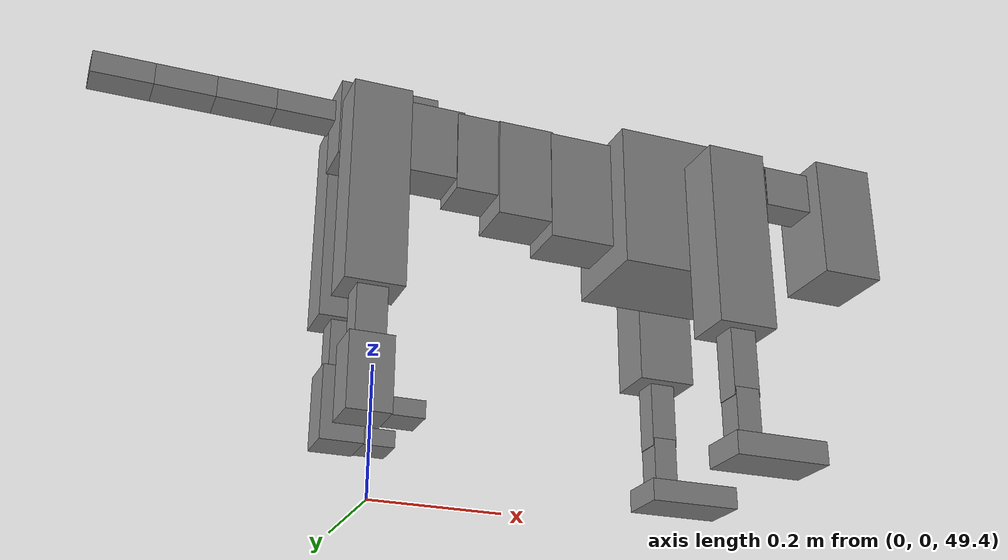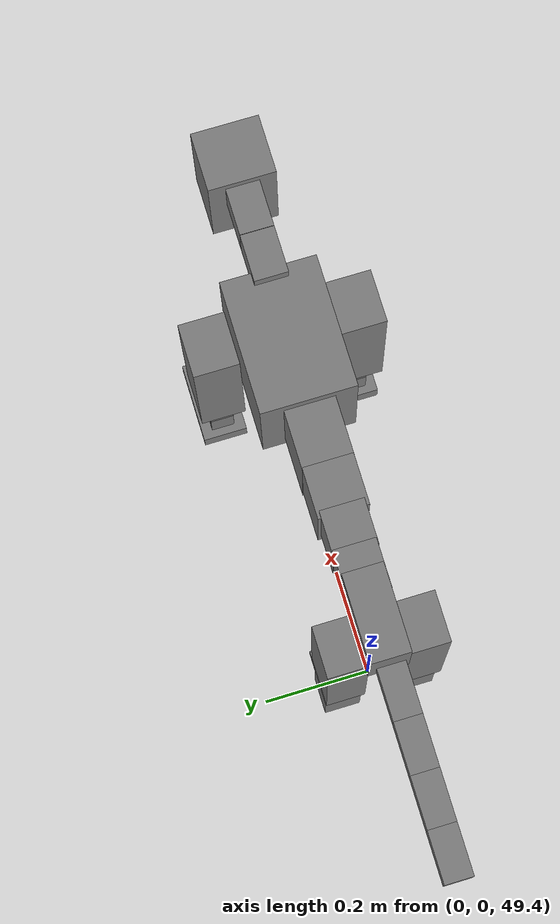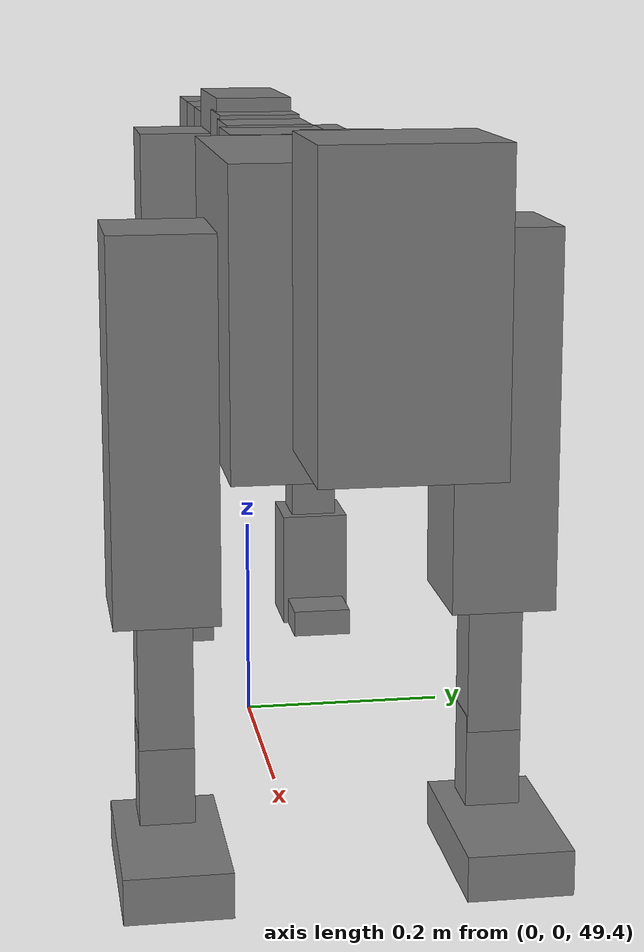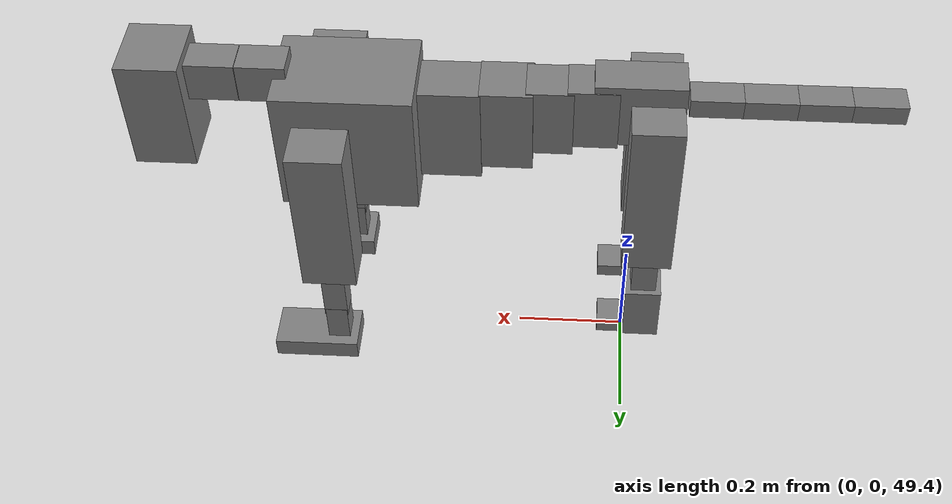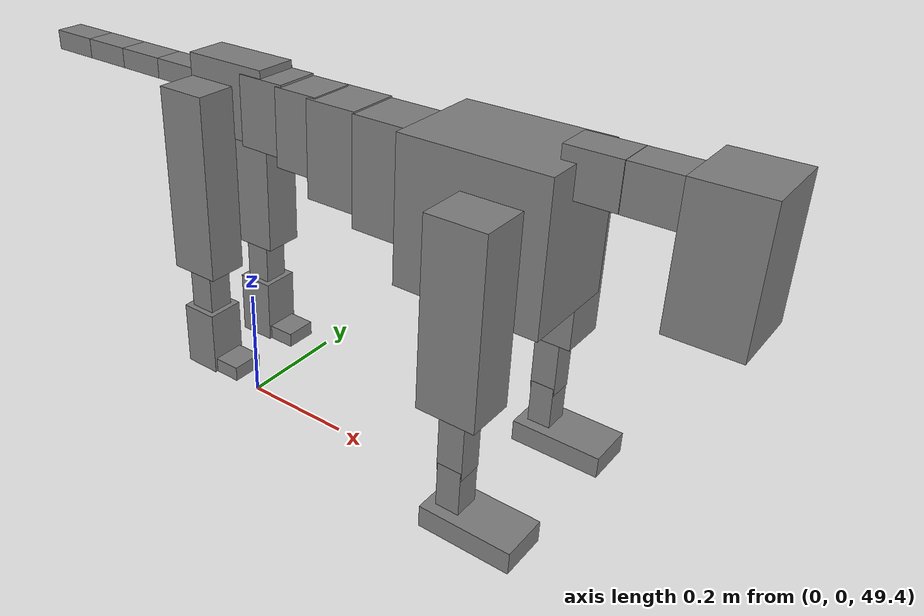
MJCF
<mujoco model="dog">

    <default>
        <joint armature="0.02" stiffness="1" damping="0.2" limited="true"/>
        <geom condim="3" friction="1 0.05 0.05" margin="0.01"/>
        <motor ctrllimited="true" ctrlrange="-1.0 1.0" forcelimited="true" gear="50"/>
    </default>

    <compiler inertiafromgeom="true" angle="radian"/>

    <option timestep="0.016" iterations="50" tolerance="1e-10" solver="Newton" jacobian="dense" cone="pyramidal"/>

    <size nconmax="20000" njmax="60000" nstack="5000000"/>
    <visual>
        <map force="0.1" zfar="30"/>
        <rgba haze="0.15 0.25 0.35 1"/>
        <quality shadowsize="2048"/>
        <global offwidth="800" offheight="800"/>
    </visual>

    <asset>
        <texture type="skybox" builtin="gradient" rgb1="0.3 0.5 0.7" rgb2="0 0 0" width="512" height="512"/>
        <texture name="texplane" type="2d" builtin="checker" rgb1=".2 .3 .4" rgb2=".1 0.15 0.2" width="512" height="512"
                 mark="cross" markrgb=".8 .8 .8"/>
        <texture name="texgeom" type="cube" builtin="flat" mark="cross" width="127" height="1278" rgb1="0.8 0.6 0.4"
                 rgb2="0.8 0.6 0.4" markrgb="1 1 1" random="0.01"/>

        <material name="matplane" reflectance="0.3" texture="texplane" texrepeat="1 1" texuniform="true"/>
        <material name="matgeom" texture="texgeom" texuniform="true" rgba="0.8 0.6 .4 1"/>
    </asset>

    <worldbody>
        <geom name="floor" pos="0 0 0" size="0 0 .25" type="plane" material="matplane" condim="3"/>

        <light directional="false" diffuse=".2 .2 .2" specular="0 0 0" pos="0 0 5" dir="0 0 -1" castshadow="false"/>
        <light mode="targetbodycom" target="torso" directional="false" diffuse=".8 .8 .8" specular="0.3 0.3 0.3"
               pos="0 0 4.0" dir="0 0 -1"/>

        <body name="root" pos="0 0 50">
            <freejoint name="root_1"/>
            <geom type="box" pos="0 0 -0.02" size="0.0774  0.0358  0.063" density="2030"/>

            <body name="spine1" pos="0.054 0 0">
                <joint name="spine1_y" axis="0 1 0" range="0 0.7" limited="true"/>
                <geom type="box" pos="0.02375 0 -0.03" size="0.04375  0.0375  0.05985" density="2030"/>

                <body name="spine2" pos="0.0612 0 0">
                    <joint name="spine2_y" axis="0 1 0" range="-0.15 0.15" limited="true"/>
                    <geom type="box" pos="0.03555  0  -0.04" size="0.04055  0.039  0.06615" density="2030"/>

                    <body name="spine3" pos="0.0730 0 0">
                        <joint name="spine3_y" axis="0 1 0" range="-0.15 0.15" limited="true"/>
                        <geom type="box" pos="0.03555  0  -0.057" size="0.04555  0.0445  0.081" density="2030"/>

                        <body name="spine4" pos="0.0780 0 0">
                            <joint name="spine4_y" axis="0 1 0" range="-0.15 0.15" limited="true"/>
                            <geom type="box" pos="0.05265  0  -0.07" size="0.05265  0.045  0.09135" density="2030"/>

                            <body name="torso" pos="0.1082 0 0">
                                <joint name="torso_y" axis="0 1 0" range="-0.15 0.15" limited="true"/>
                                <geom type="box" pos="0.11925  0  -0.085" size="0.11925  0.085  0.11745"
                                      density="2030"/>

                                <body name="neck1" pos="0.2160  0   0.0180">
                                    <joint name="neck1_y" axis="0 1 0" range="-1.2  -1" limited="true"/>
                                    <geom type="box" pos="0.0423  0  0" size="0.0423  0.03  0.036" density="2325"/>

                                    <body name="neck2" pos="0.0853  0  0">
                                        <joint name="neck2_y" axis="0 1 0" range="0.1  0" limited="true"/>
                                        <geom type="box" pos="0.0423  0  0" size="0.0423  0.03  0.036" density="2325"/>

                                        <body name="head" pos="0.0853  0  0">
                                            <joint name="head_y" axis="0 1 0" range="-0.3  -0.2" limited="true"/>
                                            <geom type="box" pos="0.0531  0  -0.055" size="0.0531  0.06  0.1044"
                                                  density="4030"/>

                                        </body>
                                    </body>
                                </body>

                                <body name="front_shoulder" pos="0.156  0   -0.0480">
                                    <joint name="front_shoulder_y" axis="0 1 0" range="-1 1.5" limited="true"/>
                                    <geom type="box" pos="0 0.13 -0.1226" size="0.0479  0.0409  0.1493" density="1158"/>
                                    <geom type="box" pos="0 -0.13 -0.1226" size="0.0479  0.0409  0.1493"
                                          density="1158"/>

                                    <body name="front_elbow" pos="0  0  -0.2452">
                                        <joint name="front_elbow_y" axis="0 1 0" range="-2 0" limited="true"/>
                                        <geom type="box" pos="0 0.13 -0.0667" size="0.0210  0.0215  0.0667"
                                              density="1081"/>
                                        <geom type="box" pos="0 -0.13 -0.0667" size="0.0210  0.0215  0.0667"
                                              density="1081"/>

                                        <body name="front_wrist" pos="0  0  -0.1335">
                                            <joint name="front_wrist_y" axis="0 1 0" range="-0.2 0" limited="true"/>
                                            <geom type="box" pos="0 0.13 -0.0387" size="0.0196  0.0218  0.0518"
                                                  density="1664"/>
                                            <geom type="box" pos="0 -0.13 -0.0387" size="0.0196  0.0218  0.0518"
                                                  density="1664"/>

                                            <body name="front_finger_end" pos="0  0  -0.0773">
                                                <joint name="front_finger_y" axis="0 1 0" range="-0.4 1"
                                                       limited="true"/>
                                                <geom type="box" pos="0.0414  0.13  -0.0031"
                                                      size="0.0760  0.0414  0.0181" density="1515"/>
                                                <geom type="box" pos="0.0414  -0.13  -0.0031"
                                                      size="0.0760  0.0414  0.0181" density="1515"/>

                                            </body>

                                        </body>
                                    </body>
                                </body>

                            </body>
                        </body>
                    </body>
                </body>
            </body>

            <body name="back_hip" pos="-0.03 0 -0.018">
                <joint name="back_hip_y" axis="0 1 0" range="-1.5 0.3" limited="true"/>
                <geom type="box" pos="0 0.07 -0.1384" size="0.0448  0.0352  0.1612" density="1154"/>
                <geom type="box" pos="0 -0.07 -0.1384" size="0.0448  0.0352  0.1612" density="1154"/>

                <body name="back_knee" pos="0  0  -0.2767">
                    <joint name="back_knee_y" axis="0 1 0" range="0 2.8" limited="true"/>
                    <geom type="box" pos="0 0.07 -0.0549" size="0.0229  0.0226  0.0705" density="1227"/>
                    <geom type="box" pos="0 -0.07 -0.0549" size="0.0229  0.0226  0.0705" density="1227"/>

                    <body name="back_ankle" pos="0  0  -0.1098">
                        <joint name="back_ankle_y" axis="0 1 0" range="-2.2 0" limited="true"/>
                        <geom type="box" pos="0 0.07 -0.0457" size="0.0330  0.0330  0.0569" density="1284"/>
                        <geom type="box" pos="0 -0.07 -0.0457" size="0.0330  0.0330  0.0569" density="1284"/>

                        <body name="back_toe_end" pos="0  0  -0.0914">
                            <joint name="back_toe_y" axis="0 1 0" range="-0.4 1" limited="true"/>
                            <geom type="box" pos="0.0285  0.07  0.0021" size="0.0523  0.0285  0.0129" density="1515"/>
                            <geom type="box" pos="0.0285  -0.07  0.0021" size="0.0523  0.0285  0.0129" density="1515"/>

                        </body>
                    </body>
                </body>
            </body>

            <body name="tail1" pos="-0.074 0 -0.006">
                <joint name="tail1_y" axis="0 1 0" range="-0.2 0.2" limited="true"/>
                <geom type="box" pos="-0.0536  0  0" size="0.045  0.025  0.0175" density="1587"/>

                <body name="tail2" pos="-0.09 0 0">
                    <joint name="tail2_y" axis="0 1 0" range="-0.2 0.2" limited="true"/>
                    <geom type="box" pos="-0.0536  0  0" size="0.045  0.025  0.0175" density="1587"/>

                    <body name="tail3" pos="-0.09 0 0">
                        <joint name="tail3_y" axis="0 1 0" range="-0.2 0.2" limited="true"/>
                        <geom type="box" pos="-0.0536  0  0" size="0.045  0.025  0.0175" density="1587"/>

                        <body name="tail4" pos="-0.09 0 0">
                            <joint name="tail4_y" axis="0 1 0" range="-0.2 0.2" limited="true"/>
                            <geom type="box" pos="-0.0536  0  0" size="0.045  0.025  0.0175" density="1587"/>

                        </body>
                    </body>
                </body>
            </body>
        </body>
    </worldbody>

    <actuator>
        <motor joint="spine1_y" forcerange="-150 150     "/>
        <motor joint="spine2_y" forcerange="-150 150     "/>
        <motor joint="spine3_y" forcerange="-150 150     "/>
        <motor joint="spine4_y" forcerange="-150 150     "/>
        <motor joint="torso_y" forcerange="-150 150     "/>
        <motor joint="neck1_y" forcerange="-100 100       "/>
        <motor joint="neck2_y" forcerange="-100 100       "/>
        <motor joint="head_y" forcerange="-150 150       "/>
        <motor joint="front_shoulder_y" forcerange="-184.27 188.39"/>
        <motor joint="front_elbow_y" forcerange="-126.23 130.00"/>
        <motor joint="front_wrist_y" forcerange="-108.84 65.53"/>
        <motor joint="front_finger_y" forcerange="-87.48 93.53"/>
        <motor joint="back_hip_y" forcerange="-370.18 298.65"/>
        <motor joint="back_knee_y" forcerange="-267.50 260.90"/>
        <motor joint="back_angle_y" forcerange="-225.68 202.67"/>
        <motor joint="back_toe_y" forcerange="-25.39 122.88"/>
        <motor joint="tail1_y" forcerange="-50 50     "/>
        <motor joint="tail2_y" forcerange="-50 50     "/>
        <motor joint="tail3_y" forcerange="-50 50     "/>
        <motor joint="tail4_y" forcerange="-50 50     "/>
    </actuator>
</mujoco>
